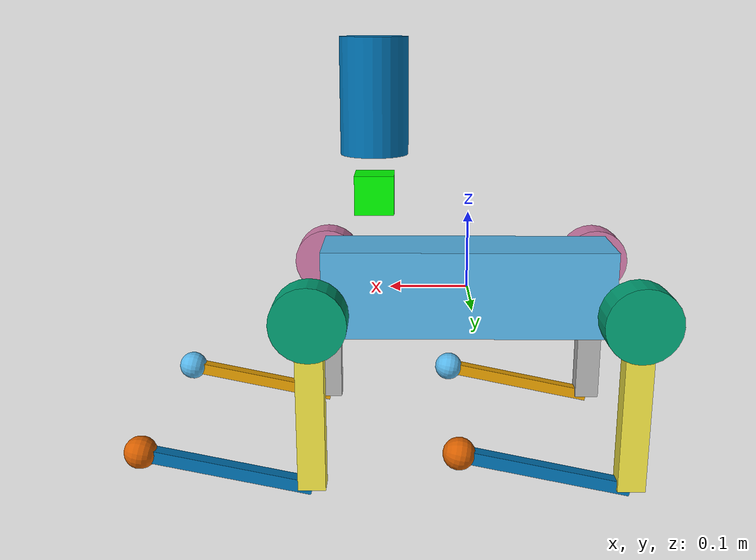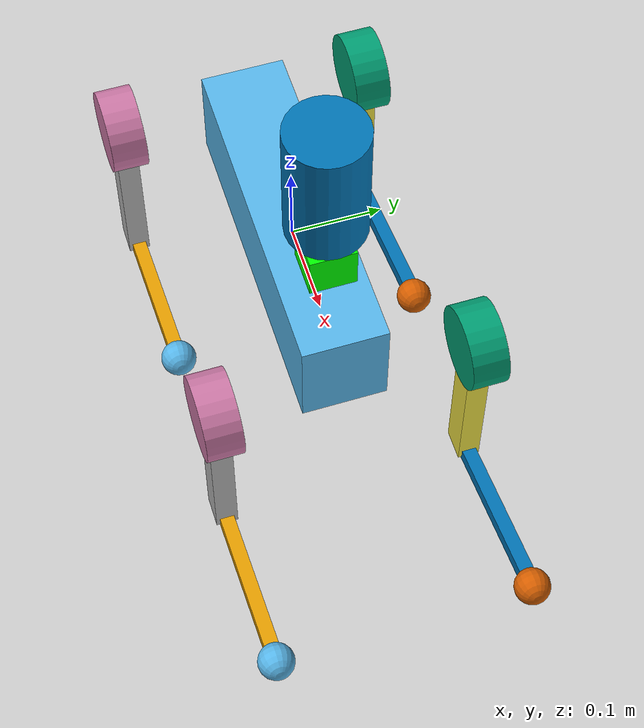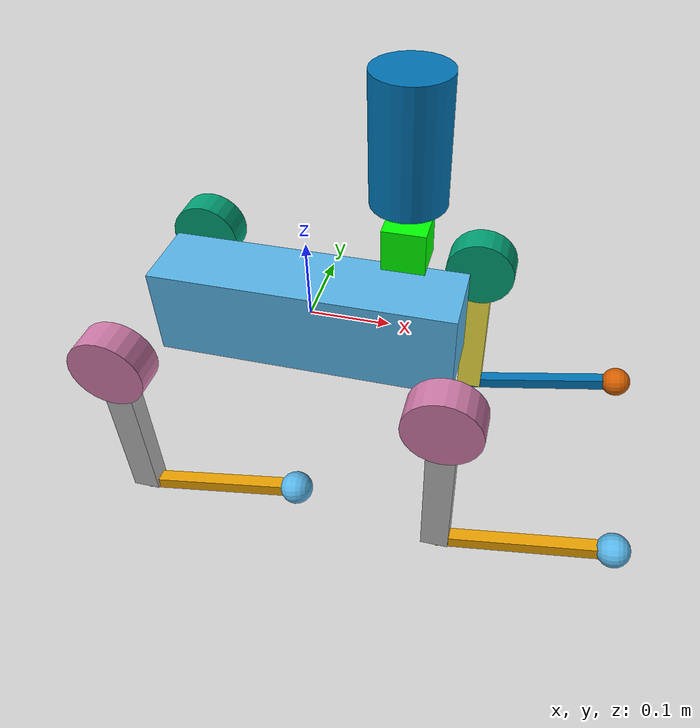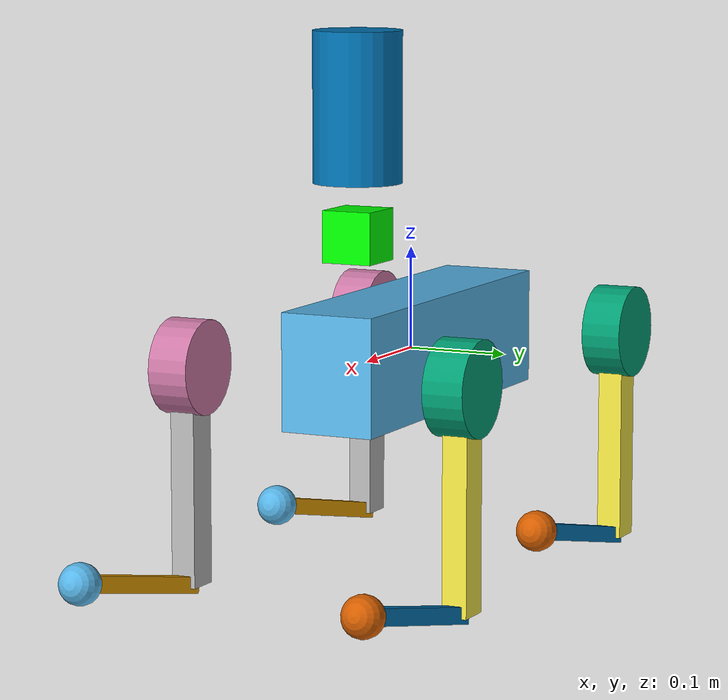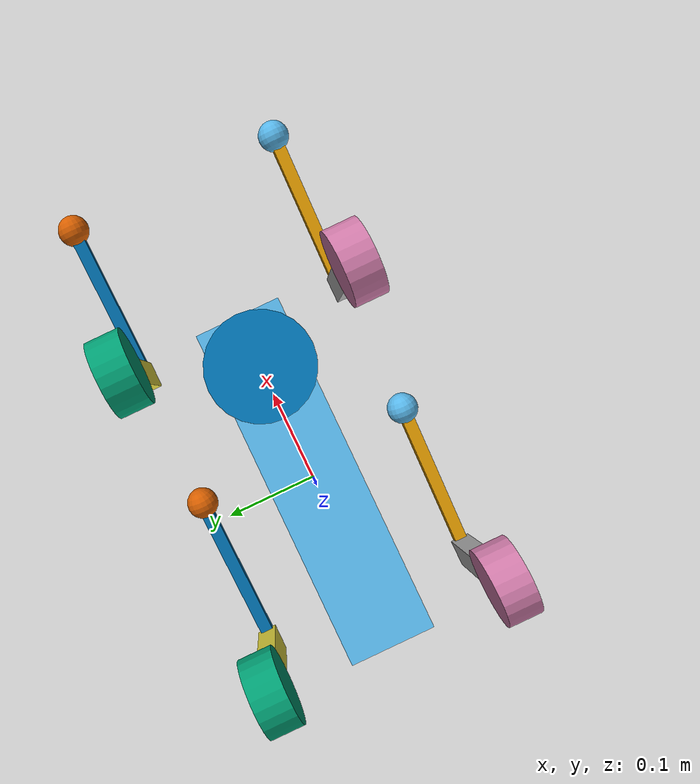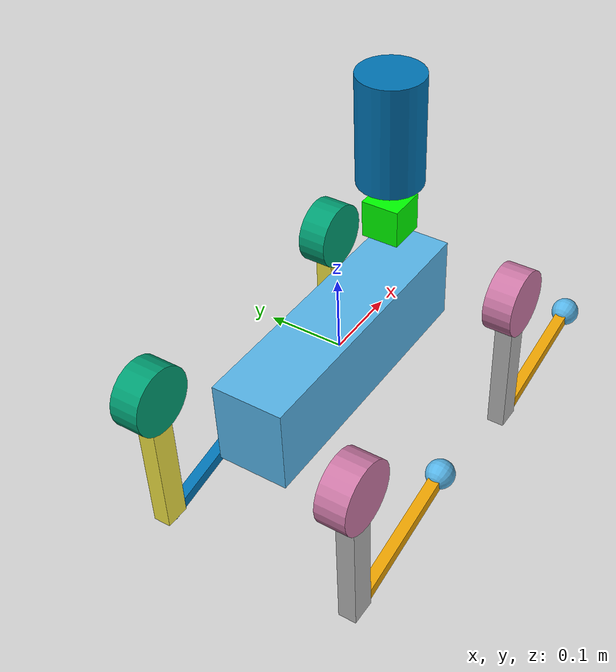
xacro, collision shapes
<?xml version="1.0"?>

<robot name="go2" xmlns:xacro="http://www.ros.org/wiki/xacro">

    <xacro:arg name="DEBUG" default="false"/>
    <xacro:arg name="xyz" default="0.12 0.0 0.175" />
    <xacro:arg name="rpy" default="0 0 0" />

    <xacro:include filename="$(find go2_description)/xacro/const.xacro"/>
    <xacro:include filename="$(find go2_description)/xacro/materials.xacro"/>
    <xacro:include filename="$(find go2_description)/xacro/leg.xacro"/>
    <xacro:include filename="$(find go2_description)/xacro/gazebo.xacro"/>
    <xacro:include filename="$(find velodyne_description)/urdf/HDL-32E.urdf.xacro"/>

    <!-- Rotor related joint and link is only for demonstrate location. -->
    <!-- Actually, the rotor will rotate and the joint is not fixed. Reduction ratio should be considered. -->

    <!-- Debug mode will hung up the robot, use "true" or "false" to switch it. -->
    <xacro:if value="$(arg DEBUG)">
        <link name="world"/>
        <joint name="base_static_joint" type="fixed">
            <origin rpy="0 0 0" xyz="0 0 0"/>
            <parent link="world"/>
            <child link="base"/>
        </joint>
    </xacro:if>

    <link name="base">
        <visual>
            <origin rpy="0 0 0" xyz="0 0 0"/>
            <geometry>
                <box size="0.001 0.001 0.001"/>
            </geometry>
        </visual>
    </link>

    <joint name="floating_base" type="fixed">
        <origin rpy="0 0 0" xyz="0 0 0"/>
        <parent link="base"/>
        <child link="trunk"/>
    </joint>

    <link name="trunk">
        <visual>
            <origin rpy="0 0 0" xyz="0 0 0"/>
            <geometry>
                <mesh filename="package://go2_description/meshes/trunk.dae" scale="1 1 1"/>
            </geometry>
        </visual>
        <collision>
            <origin rpy="0 0 0" xyz="0 0 0"/>
            <geometry>
                <box size="${trunk_length} ${trunk_width} ${trunk_height}"/>
            </geometry>
        </collision>
        <inertial>
            <origin rpy="0 0 0" xyz="${trunk_com_x} ${trunk_com_y} ${trunk_com_z}"/>
            <mass value="${trunk_mass}"/>
            <inertia
                ixx="${trunk_ixx}" ixy="${trunk_ixy}" ixz="${trunk_ixz}"
                iyy="${trunk_iyy}" iyz="${trunk_iyz}"
                izz="${trunk_izz}"/>
        </inertial>
    </link>

    <joint name="imu_joint" type="fixed">
        <parent link="trunk"/>
        <child link="imu_link"/>
        <origin xyz="0.12 0 0.125" rpy="0 0 0"/>
    </joint>

    <!-- IMU -->
    <link name="imu_link">
        <collision>
        <origin xyz="0 0 0" rpy="0 0 0"/>
        <geometry>
            <box size="0.05 0.05 0.05"/>
        </geometry>
        </collision>
        <visual>
        <origin xyz="0 0 0" rpy="0 0 0"/>
        <geometry>
            <box size="0.05 0.05 0.05"/>
        </geometry>
        <material name="green">
            <color rgba="0 1 0 1"/>
        </material>
        </visual>
        <inertial>
        <mass value="1e-2" />
        <origin xyz="0 0 0" rpy="0 0 0"/>
        <inertia ixx="1e-6" ixy="0" ixz="0" iyy="1e-6" iyz="0" izz="1e-6" />
        </inertial>
    </link>

    <joint name="front_camera_joint" type="fixed">
        <parent link="trunk"/>
        <child link="front_camera"/>
        <origin rpy="0 0 0" xyz="0.32715 -0.00003 0.04297"/>
    </joint>

    <link name="front_camera">
    </link>

  <xacro:HDL-32E parent="trunk" name="velodyne" topic="/velodyne_points" hz="10" min_range="0.3"  >
      <origin xyz="0.12 0.0 0.175" rpy="0 0 0" />
  </xacro:HDL-32E>

    <!-- Livox-Mid360  -->

    <xacro:leg name="FR" mirror="-1" mirror_dae= "False" front_hind="1"  front_hind_dae="True"  />
    <xacro:leg name="FL" mirror="1"  mirror_dae="True"   front_hind="1"  front_hind_dae="True"  />
    <xacro:leg name="RR" mirror="-1" mirror_dae="False"  front_hind="-1" front_hind_dae="False" />
    <xacro:leg name="RL" mirror="1"  mirror_dae="True"   front_hind="-1" front_hind_dae="False" />
</robot>

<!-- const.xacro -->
<robot xmlns:xacro="http://www.ros.org/wiki/xacro">

    <!-- Constants for robot dimensions -->
    <xacro:property name="PI" value="3.1415926535897931"/>
    <xacro:property name="stick_mass" value="0.00001"/>

    <!-- simplified collision value -->
    <xacro:property name="trunk_width" value="0.0935"/>
    <xacro:property name="trunk_length" value="0.3762"/>
    <xacro:property name="trunk_height" value="0.114"/>
    <xacro:property name="hip_radius" value="0.046"/>
    <xacro:property name="hip_length" value="0.04"/>
    <xacro:property name="thigh_shoulder_radius" value="0.041"/>
    <xacro:property name="thigh_shoulder_length" value="0.032"/>
    <xacro:property name="thigh_width" value="0.0245"/>
    <xacro:property name="thigh_height" value="0.034"/>
    <xacro:property name="calf_width" value="0.016"/>
    <xacro:property name="calf_height" value="0.016"/>
    <xacro:property name="foot_radius" value="0.02"/>
    <xacro:property name="stick_radius" value="0.01"/>
    <xacro:property name="stick_length" value="0.2"/>

    <!-- kinematic value -->
    <xacro:property name="thigh_offset" value="0.0955"/>
    <xacro:property name="thigh_length" value="0.213"/>
    <xacro:property name="calf_length" value="0.213"/>

    <!-- leg offset from trunk center value -->
    <xacro:property name="leg_offset_x" value="0.1934"/>
    <xacro:property name="leg_offset_y" value="0.0465"/>
    <xacro:property name="hip_offset" value="0.0955"/>

    <!-- offset of link locations (left front) -->
    <xacro:property name="hip_offset_x" value="0.1934"/>
    <xacro:property name="hip_offset_y" value="0.0465"/>
    <xacro:property name="hip_offset_z" value="0.0"/>

    <xacro:property name="thigh_offset_x" value="0"/>
    <xacro:property name="thigh_offset_y" value="0.0955"/>
    <xacro:property name="thigh_offset_z" value="0.0"/>

    <xacro:property name="calf_offset_x" value="0.0"/>
    <xacro:property name="calf_offset_y" value="0.0"/>
    <xacro:property name="calf_offset_z" value="-0.213"/>

    <!-- joint limits -->
    <xacro:property name="damping" value="0.0"/>
    <xacro:property name="friction" value="0.0"/>
    <xacro:property name="hip_position_max" value="1.0472"/>
    <xacro:property name="hip_position_min" value="-1.0472"/>
    <xacro:property name="hip_velocity_max" value="30.1"/>
    <xacro:property name="hip_torque_max" value="23.7"/>
    <xacro:property name="thigh_position_max" value="3.4907"/>
    <xacro:property name="thigh_position_min" value="-1.5708"/>
    <xacro:property name="thigh_velocity_max" value="30.1"/>
    <xacro:property name="thigh_torque_max" value="23.7"/>
    <xacro:property name="calf_position_max" value="-0.83776"/>
    <xacro:property name="calf_position_min" value="-2.7227"/>
    <xacro:property name="calf_velocity_max" value="20.06"/>
    <xacro:property name="calf_torque_max" value="35.55"/>

    <!-- dynamics inertial value -->
    <!-- trunk -->
    <xacro:property name="trunk_mass" value="6.921"/>
    <xacro:property name="trunk_com_x" value="0.021112"/>
    <xacro:property name="trunk_com_y" value="0.00"/>
    <xacro:property name="trunk_com_z" value="-0.005366"/>
    <xacro:property name="trunk_ixx" value="0.02448"/>
    <xacro:property name="trunk_ixy" value="0.00012166"/>
    <xacro:property name="trunk_ixz" value="0.0014849"/>
    <xacro:property name="trunk_iyy" value="0.098077"/>
    <xacro:property name="trunk_iyz" value="-3.12E-05"/>
    <xacro:property name="trunk_izz" value="0.107"/>

    <!-- hip (left front) -->
    <xacro:property name="hip_mass" value="0.678"/>
    <xacro:property name="hip_com_x" value="-0.0054"/>
    <xacro:property name="hip_com_y" value="0.00194"/>
    <xacro:property name="hip_com_z" value="-0.000105"/>
    <xacro:property name="hip_ixx" value="0.00048"/>
    <xacro:property name="hip_ixy" value="-3.01E-06"/>
    <xacro:property name="hip_ixz" value="1.11E-06"/>
    <xacro:property name="hip_iyy" value="0.000884"/>
    <xacro:property name="hip_iyz" value="-1.42E-06"/>
    <xacro:property name="hip_izz" value="0.000596"/>

    <!-- thigh -->
    <xacro:property name="thigh_mass" value="1.152"/>
    <xacro:property name="thigh_com_x" value="-0.00374"/>
    <xacro:property name="thigh_com_y" value="-0.0223"/>
    <xacro:property name="thigh_com_z" value="-0.0327"/>
    <xacro:property name="thigh_ixx" value="0.00584"/>
    <xacro:property name="thigh_ixy" value="8.72E-05"/>
    <xacro:property name="thigh_ixz" value="-0.000289"/>
    <xacro:property name="thigh_iyy" value="0.0058"/>
    <xacro:property name="thigh_iyz" value="0.000808"/>
    <xacro:property name="thigh_izz" value="0.00103"/>

    <!-- calf -->
    <xacro:property name="calf_mass" value="0.154"/>
    <xacro:property name="calf_com_x" value="0.00548"/>
    <xacro:property name="calf_com_y" value="-0.000975"/>
    <xacro:property name="calf_com_z" value="-0.115"/>
    <xacro:property name="calf_ixx" value="0.00108"/>
    <xacro:property name="calf_ixy" value="3.4E-07"/>
    <xacro:property name="calf_ixz" value="1.72E-05"/>
    <xacro:property name="calf_iyy" value="0.0011"/>
    <xacro:property name="calf_iyz" value="8.28E-06"/>
    <xacro:property name="calf_izz" value="3.29E-05"/>

    <!-- foot -->
    <xacro:property name="foot_mass" value="0.06"/>

</robot>

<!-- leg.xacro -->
<robot xmlns:xacro="http://www.ros.org/wiki/xacro">

    <xacro:include filename="$(find go2_description)/xacro/transmission.xacro"/>

    <xacro:macro name="leg" params="name mirror mirror_dae front_hind front_hind_dae">

        <joint name="${name}_hip_joint" type="revolute">
            <xacro:if value="${(mirror_dae == False) and (front_hind_dae == True)}">
                <origin rpy="0 0 0" xyz="${leg_offset_x} ${-leg_offset_y} 0"/>
            </xacro:if>
            <xacro:if value="${(mirror_dae == True) and (front_hind_dae == True)}">
                <origin rpy="0 0 0" xyz="${leg_offset_x} ${leg_offset_y} 0"/>
            </xacro:if>
            <xacro:if value="${(mirror_dae == False) and (front_hind_dae == False)}">
                <origin rpy="0 0 0" xyz="${-leg_offset_x} ${-leg_offset_y} 0"/>
            </xacro:if>
            <xacro:if value="${(mirror_dae == True) and (front_hind_dae == False)}">
                <origin rpy="0 0 0" xyz="${-leg_offset_x} ${leg_offset_y} 0"/>
            </xacro:if>
            <parent link="trunk"/>
            <child link="${name}_hip"/>
            <axis xyz="1 0 0"/>
            <dynamics damping="${damping}" friction="${friction}"/>
            <xacro:if value="${(mirror_dae == True)}">
                <limit effort="${hip_torque_max}" velocity="${hip_velocity_max}" lower="${hip_position_min}" upper="${hip_position_max}"/>
            </xacro:if>
            <xacro:if value="${(mirror_dae == False)}">
                <limit effort="${hip_torque_max}" velocity="${hip_velocity_max}" lower="${-hip_position_max}" upper="${-hip_position_min}"/>
            </xacro:if>
        </joint>

        <link name="${name}_hip">
            <visual>
                <xacro:if value="${(mirror_dae == True) and (front_hind_dae == True)}">
                    <origin rpy="0 0 0" xyz="0 0 0"/>
                </xacro:if>
                <xacro:if value="${(mirror_dae == False) and (front_hind_dae == True)}">
                    <origin rpy="${PI} 0 0" xyz="0 0 0"/>
                </xacro:if>
                <xacro:if value="${(mirror_dae == True) and (front_hind_dae == False)}">
                    <origin rpy="0 ${PI} 0" xyz="0 0 0"/>
                </xacro:if>
                <xacro:if value="${(mirror_dae == False) and (front_hind_dae == False)}">
                    <origin rpy="${PI} ${PI} 0" xyz="0 0 0"/>
                </xacro:if>
                <geometry>
                    <mesh filename="package://go2_description/meshes/hip.dae" scale="1 1 1"/>
                </geometry>
            </visual>
            <collision>
                <origin rpy="${PI/2.0} 0 0" xyz="0 ${hip_offset*mirror} 0"/>
                <geometry>
                    <cylinder length="${hip_length}" radius="${hip_radius}"/>
                </geometry>
            </collision>
            <inertial>
                <origin rpy="0 0 0" xyz="${hip_com_x*front_hind} ${hip_com_y*mirror} ${hip_com_z}"/>
                <mass value="${hip_mass}"/>
                <inertia
                    ixx="${hip_ixx}" ixy="${hip_ixy*mirror*front_hind}" ixz="${hip_ixz*front_hind}"
                    iyy="${hip_iyy}" iyz="${hip_iyz*mirror}"
                    izz="${hip_izz}"/>
            </inertial>
        </link>

        <joint name="${name}_thigh_joint" type="revolute">
            <origin rpy="0 0 0" xyz="0 ${thigh_offset*mirror} 0"/>
            <parent link="${name}_hip"/>
            <child link="${name}_thigh"/>
            <axis xyz="0 1 0"/>
            <dynamics damping="${damping}" friction="${friction}"/>
            <limit effort="${thigh_torque_max}" velocity="${thigh_velocity_max}" lower="${thigh_position_min}" upper="${thigh_position_max}"/>
        </joint>

        <link name="${name}_thigh">
            <visual>
                <origin rpy="0 0 0" xyz="0 0 0"/>
                <geometry>
                    <xacro:if value="${mirror_dae == True}">
                        <mesh filename="package://go2_description/meshes/thigh.dae" scale="1 1 1"/>
                    </xacro:if>
                    <xacro:if value="${mirror_dae == False}">
                        <mesh filename="package://go2_description/meshes/thigh_mirror.dae" scale="1 1 1"/>
                    </xacro:if>
                </geometry>
            </visual>
            <collision>
                <origin rpy="0 ${PI/2.0} 0" xyz="0 0 ${-thigh_length/2.0}"/>
                <geometry>
                    <box size="${thigh_length} ${thigh_width} ${thigh_height}"/>
                </geometry>
            </collision>
            <inertial>
                <origin rpy="0 0 0" xyz="${thigh_com_x} ${thigh_com_y*mirror} ${thigh_com_z}"/>
                <mass value="${thigh_mass}"/>
                <inertia
                    ixx="${thigh_ixx}" ixy="${thigh_ixy*mirror}" ixz="${thigh_ixz}"
                    iyy="${thigh_iyy}" iyz="${thigh_iyz*mirror}"
                    izz="${thigh_izz}"/>
            </inertial>
        </link>

        <joint name="${name}_calf_joint" type="revolute">
            <origin rpy="0 0 0" xyz="0 0 ${-thigh_length}"/>
            <parent link="${name}_thigh"/>
            <child link="${name}_calf"/>
            <axis xyz="0 1 0"/>
            <dynamics damping="${damping}" friction="${friction}"/>
            <limit effort="${calf_torque_max}" velocity="${calf_velocity_max}" lower="${calf_position_min}" upper="${calf_position_max}"/>
        </joint>

        <link name="${name}_calf">
            <visual>
                <origin rpy="0 0 0" xyz="0 0 0"/>
                <geometry>
                    <mesh filename="package://go2_description/meshes/calf.dae" scale="1 1 1"/>
                </geometry>
            </visual>
            <collision>
                <origin rpy="0 ${PI/2.0} 0" xyz="0 0 ${-calf_length/2.0}"/>
                <geometry>
                    <box size="${calf_length} ${calf_width} ${calf_height}"/>
                </geometry>
            </collision>
            <inertial>
                <origin rpy="0 0 0" xyz="${calf_com_x} ${calf_com_y} ${calf_com_z}"/>
                <mass value="${calf_mass}"/>
                <inertia
                    ixx="${calf_ixx}" ixy="${calf_ixy}" ixz="${calf_ixz}"
                    iyy="${calf_iyy}" iyz="${calf_iyz}"
                    izz="${calf_izz}"/>
            </inertial>
        </link>

        <joint name="${name}_foot_fixed" type="fixed">0
            <origin rpy="0 0 0" xyz="0 0 ${-(calf_length)}"/>
            <parent link="${name}_calf"/>
            <child link="${name}_foot"/>
        </joint>

        <link name="${name}_foot">
            <visual>
                <origin rpy="0 0 0" xyz="0 0 0"/>
                <geometry>
                    <sphere radius="${foot_radius-0.01}"/>
                </geometry>
            </visual>
            <collision>
                <origin rpy="0 0 0" xyz="0 0 0"/>
                <geometry>
                    <sphere radius="${foot_radius}"/>
                </geometry>
            </collision>
            <inertial>
                <mass value="${foot_mass}"/>
                <inertia
                    ixx="${(2*foot_mass)/5.0*(foot_radius*foot_radius)}" ixy="0.0" ixz="0.0"
                    iyy="${(2*foot_mass)/5.0*(foot_radius*foot_radius)}" iyz="0.0"
                    izz="${(2*foot_mass)/5.0*(foot_radius*foot_radius)}"/>
            </inertial>
        </link>

        <xacro:leg_transmission name="${name}"/>
    </xacro:macro>
</robot>

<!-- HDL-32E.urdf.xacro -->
<robot xmlns:xacro="http://www.ros.org/wiki/xacro" name="HDL-32E">
  <xacro:property name="M_PI" value="3.1415926535897931" />
  <xacro:macro name="HDL-32E" params="*origin parent:=base_link name:=velodyne topic:=/velodyne_points hz:=10 lasers:=32 samples:=2187 collision_range:=0.3 min_range:=0.9 max_range:=130.0 noise:=0.008 min_angle:=-${M_PI} max_angle:=${M_PI} gpu:=true">

    <joint name="${name}_base_mount_joint" type="fixed">
      <xacro:insert_block name="origin" />
      <parent link="${parent}"/>
      <child link="${name}_base_link"/>
    </joint>

    <link name="${name}_base_link">
      <inertial>
        <mass value="1.0"/>
        <origin xyz="0 0 0.07212"/>
        <inertia ixx="${(1.0 * (3.0*0.04267*0.04267 + 0.14424*0.14424)) / 12.0}" ixy="0" ixz="0"
          iyy="${(1.0 * (3.0*0.04267*0.04267 + 0.14424*0.14424)) / 12.0}" iyz="0"
          izz="${0.5 * 1.0 * (0.04267*0.04267)}"/>
      </inertial>
      <visual>
        <geometry>
          <mesh filename="package://velodyne_description/meshes/HDL32E_base.dae" />
        </geometry>
      </visual>
      <collision>
        <origin rpy="0 0 0" xyz="0 0 0.07212"/>
        <geometry>
          <cylinder radius="0.04267" length="0.14424"/>
        </geometry>
      </collision>
    </link>

    <joint name="${name}_base_scan_joint" type="fixed" >
      <origin xyz="0 0 0.09081" rpy="0 0 0" />
      <parent link="${name}_base_link" />
      <child link="${name}"/>
    </joint>

    <link name="${name}">
      <inertial>
        <mass value="0.01"/>
        <origin xyz="0 0 0"/>
        <inertia ixx="1e-7" ixy="0" ixz="0" iyy="1e-7" iyz="0" izz="1e-7"/>
      </inertial>
      <visual>
        <origin xyz="0 0 -0.09081" rpy="0 0 0" />
        <geometry>
          <mesh filename="package://velodyne_description/meshes/HDL32E_scan.dae" />
        </geometry>
      </visual>
    </link>

    <!-- Gazebo requires the velodyne_gazebo_plugins package -->
    <gazebo reference="${name}">
      <xacro:if value="${gpu}">
        <sensor type="gpu_ray" name="${name}-HDL32E">
          <pose>0 0 0 0 0 0</pose>
          <visualize>false</visualize>
          <update_rate>${hz}</update_rate>
          <ray>
            <scan>
              <horizontal>
                <samples>${samples}</samples>
                <resolution>1</resolution>
                <min_angle>${min_angle}</min_angle>
                <max_angle>${max_angle}</max_angle>
              </horizontal>
              <vertical>
                <samples>${lasers}</samples>
                <resolution>1</resolution>
                <min_angle>-${30.67*M_PI/180.0}</min_angle>
                <max_angle> ${10.67*M_PI/180.0}</max_angle>
              </vertical>
            </scan>
            <range>
              <min>${collision_range}</min>
              <max>${max_range+1}</max>
              <resolution>0.001</resolution>
            </range>
            <noise>
              <type>gaussian</type>
              <mean>0.0</mean>
              <stddev>0.0</stddev>
            </noise>
          </ray>
          <plugin name="gazebo_ros_laser_controller" filename="libgazebo_ros_velodyne_gpu_laser.so">
            <topicName>${topic}</topicName>
            <frameName>${name}</frameName>
            <min_range>${min_range}</min_range>
            <max_range>${max_range}</max_range>
            <gaussianNoise>${noise}</gaussianNoise>
          </plugin>
        </sensor>
      </xacro:if>
      <xacro:unless value="${gpu}">
        <sensor type="ray" name="${name}-HDL32E">
          <pose>0 0 0 0 0 0</pose>
          <visualize>false</visualize>
          <update_rate>${hz}</update_rate>
          <ray>
            <scan>
              <horizontal>
                <samples>${samples}</samples>
                <resolution>1</resolution>
                <min_angle>${min_angle}</min_angle>
                <max_angle>${max_angle}</max_angle>
              </horizontal>
              <vertical>
                <samples>${lasers}</samples>
                <resolution>1</resolution>
                <min_angle>-${30.67*M_PI/180.0}</min_angle>
                <max_angle> ${10.67*M_PI/180.0}</max_angle>
              </vertical>
            </scan>
            <range>
              <min>${collision_range}</min>
              <max>${max_range+1}</max>
              <resolution>0.001</resolution>
            </range>
            <noise>
              <type>gaussian</type>
              <mean>0.0</mean>
              <stddev>0.0</stddev>
            </noise>
          </ray>
          <plugin name="gazebo_ros_laser_controller" filename="libgazebo_ros_velodyne_laser.so">
            <topicName>${topic}</topicName>
            <frameName>${name}</frameName>
            <min_range>${min_range}</min_range>
            <max_range>${max_range}</max_range>
            <gaussianNoise>${noise}</gaussianNoise>
          </plugin>
        </sensor>
      </xacro:unless>
    </gazebo>

  </xacro:macro>
</robot>
